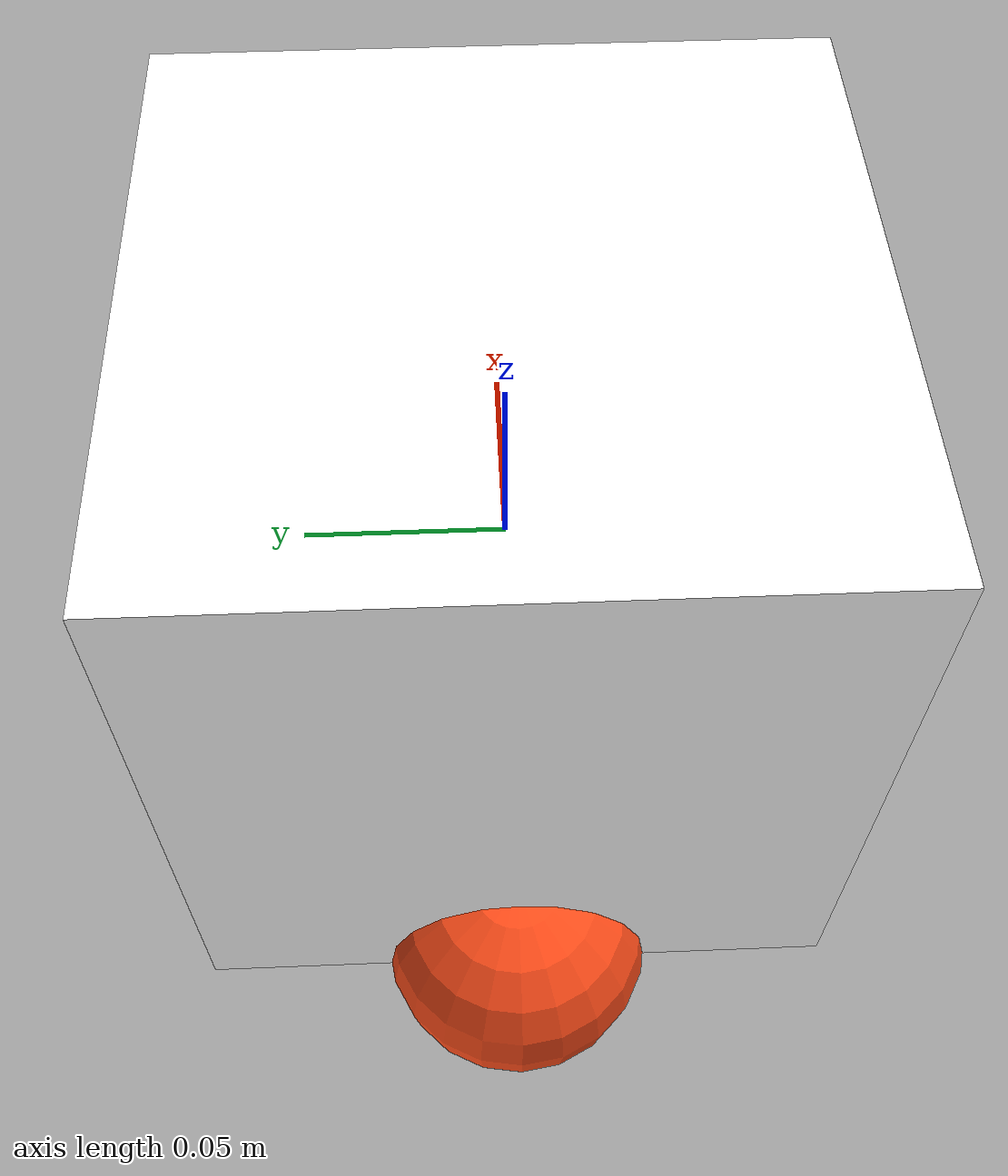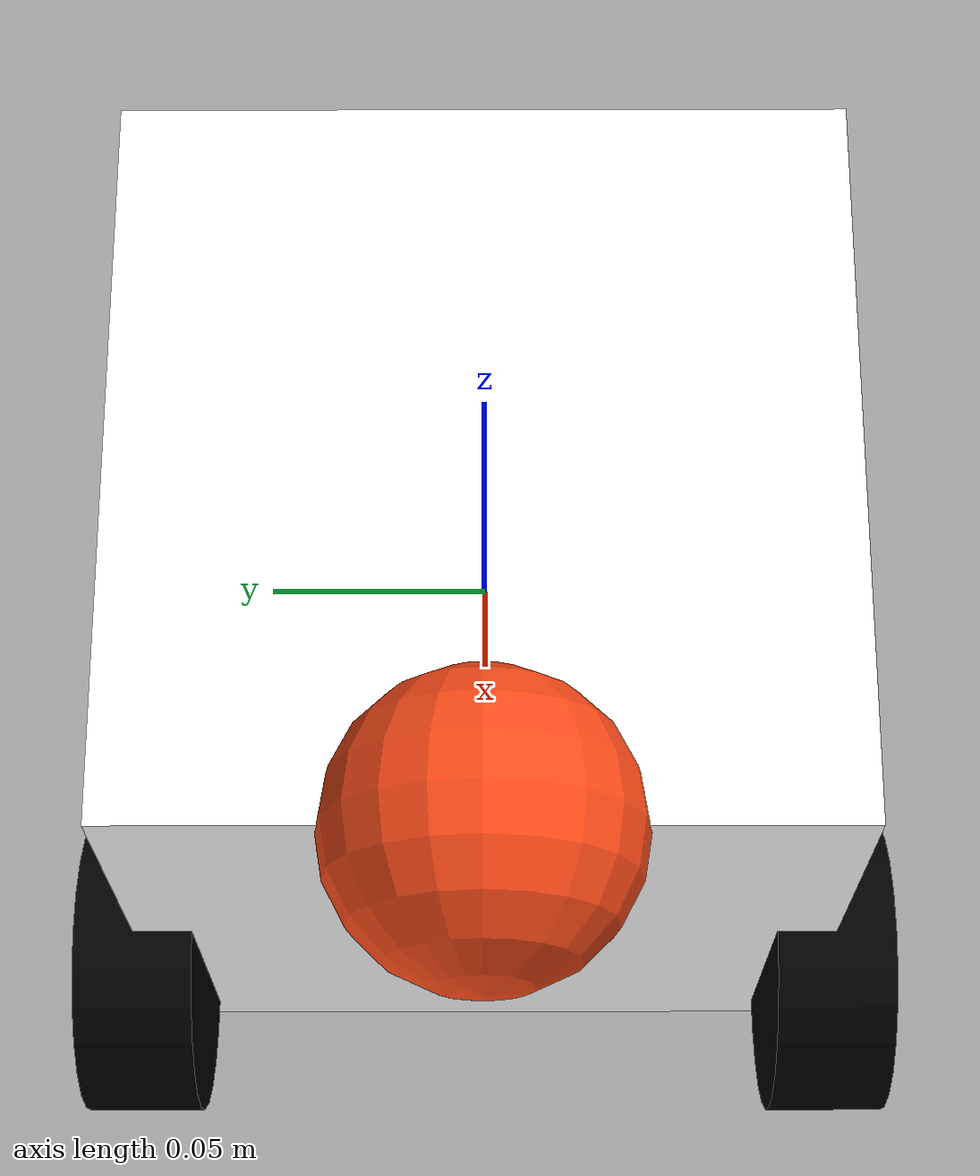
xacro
<?xml version="1.0"?>
<robot xmlns:xacro="http://www.ros.org/wiki/xacro"  name="robot">
    <xacro:include filename="inertial_macros.xacro"/>
    <xacro:include filename="robot_macros.xacro"/>

    <material name="white">
        <color rgba="1 1 1 1"/>
    </material>

    <material name="black">
        <color rgba="0 0 0 1"/>
    </material>

    <material name="red">
        <color rgba="0.5 0 0 1"/>
    </material>

    <material name="orange">
        <color rgba="1 0.3 0.1 1" />
    </material>

    <material name="blue">
        <color rgba="0.2 0.2 1 1" />
    </material>

    <link name="base_link">
        <visual>
        <origin xyz="0 0 0" rpy="0 0 0"/>
        <geometry>
            <box size="0.16 0.16 0.1650"/>
        </geometry>
        <material name="white"/>
        </visual>
        <collision>
        <origin xyz="0 0 0" rpy="0 0 0"/>
            <geometry>
            <box size="0.16 0.16 0.1650"/>
            </geometry>
        </collision>

        <xacro:inertial_box mass="5" x="0.16" y="0.16" z="0.165">
            <origin xyz="0 0 0" rpy="0 0 0"/>
        </xacro:inertial_box>
    </link>

    <link name="base_footprint">
    </link>

    <joint name="base_footprint_joint" type="fixed">
        <parent link="base_link"/>
        <child link="base_footprint"/>
        <origin xyz="0 0 0" rpy="0 0 0"/>
    </joint>

    <!-- Left wheel -->
    <link name="left_wheel">
    <visual>
        <origin xyz="0 0 0" rpy="0 0 0"/>
        <geometry>
            <cylinder radius="0.034" length="0.027"/>
        </geometry>
        <material name="black"/>
    </visual>
    <collision>
        <origin xyz="0 0 0" rpy="0 0 0"/>
        <geometry>
            <cylinder radius="0.034" length="0.027"/>
        </geometry>
    </collision>

    <xacro:inertial_cylinder mass="0.2" radius="0.034" length="0.027">
        <origin xyz="0 0 0" rpy="0 0 0"/>
    </xacro:inertial_cylinder>
    </link>

    <joint name="left_wheel_joint" type="continuous">
    <parent link="base_link"/>
    <child link="left_wheel"/>
        <origin xyz="0.035 0.08 -0.082" rpy="-${pi/2} 0 0"/>
        <axis xyz="0 0 1"/>
    </joint>

    <!-- Right wheel -->
    <link name="right_wheel">
    <visual>
        <origin xyz="0 0 0" rpy="0 0 0"/>
        <geometry>
            <cylinder radius="0.034" length="0.027"/>
        </geometry>
        <material name="black"/>
    </visual>
    <collision>
        <origin xyz="0 0 0" rpy="0 0 0"/>
        <geometry>
            <cylinder radius="0.034" length="0.027"/>
        </geometry>
    </collision>

    <xacro:inertial_cylinder mass="0.2" radius="0.034" length="0.027">
        <origin xyz="0 0 0" rpy="0 0 0"/>
    </xacro:inertial_cylinder>
    </link>

    <joint name="right_wheel_joint" type="continuous">
    <parent link="base_link"/>
    <child link="right_wheel"/>
        <origin xyz="0.035 -0.08 -0.082" rpy="${pi/2} 0 0"/>
        <axis xyz="0 0 -1"/>
    </joint>

    <joint name="castor_joint" type="fixed">
        <parent link="base_link"/>
        <child link="castor_wheel"/>
        <origin xyz="-0.075 0 -0.082"/>
    </joint>

    <link name="castor_wheel">
        <visual>
            <geometry>
                <sphere radius = "0.034"/>
            </geometry>
            <material name="orange"/>
        </visual>
    </link>

</robot>
